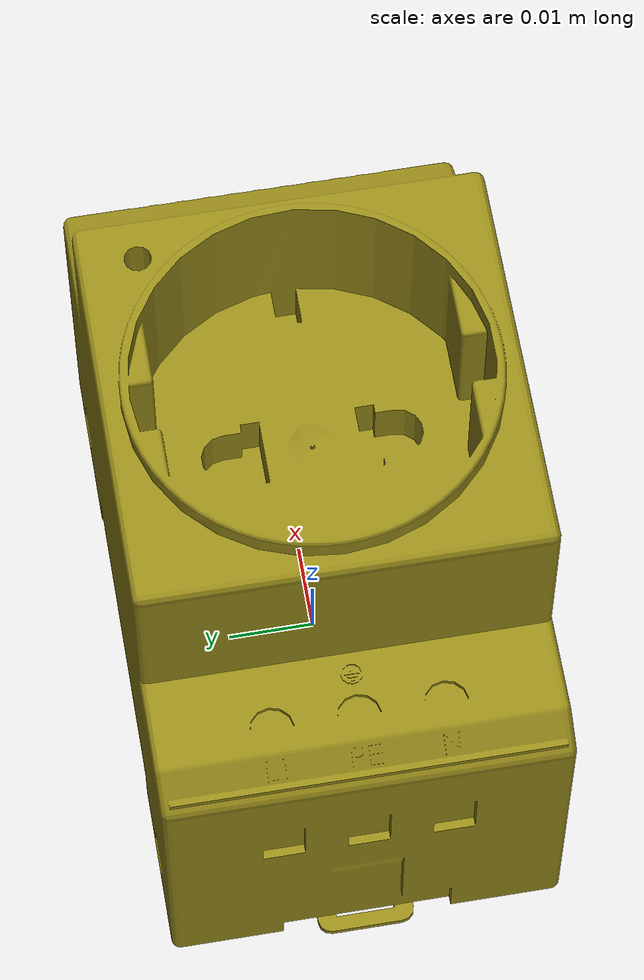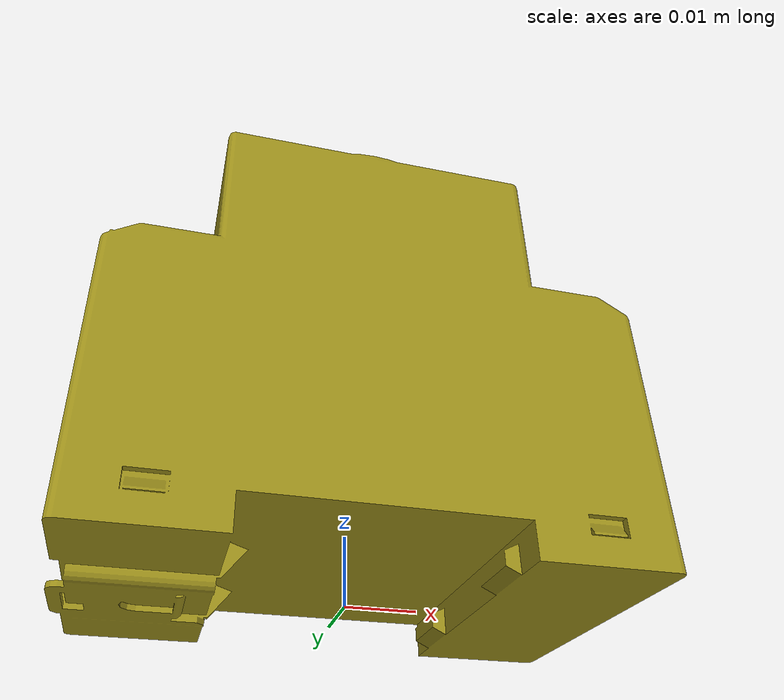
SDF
<?xml version="1.0" ?>
<sdf version="1.6">
  <model name="plug_socket_drc_220v_16a">
    <link name="link">
      <gravity>false</gravity>
      <visual name="visual">
        <geometry>
          <mesh>
            <uri>file:///root/workcell_ws_classic/src/descriptions/ur_description/meshes/feeder/elec/objects/Plug_socket_DRC-220V-16A.STL</uri>
            <scale>1 1 1</scale>
          </mesh>
        </geometry>
        <material>
          <!-- Dark metallic yellow -->
          <ambient>0.4 0.38 0.05 1</ambient>
          <diffuse>0.6 0.55 0.1 1</diffuse>
          <specular>0.6 0.6 0.5 1</specular>
          <emissive>0 0 0 1</emissive>
        </material>
      </visual>

        <inertial>
          <mass>0.2</mass>
          <inertia>
            <ixx>0.0005</ixx>
            <ixy>0</ixy>
            <ixz>0</ixz>
            <iyy>0.0005</iyy>
            <iyz>0</iyz>
            <izz>0.0005</izz>
          </inertia>
        </inertial>
    </link>
  </model>
</sdf>
